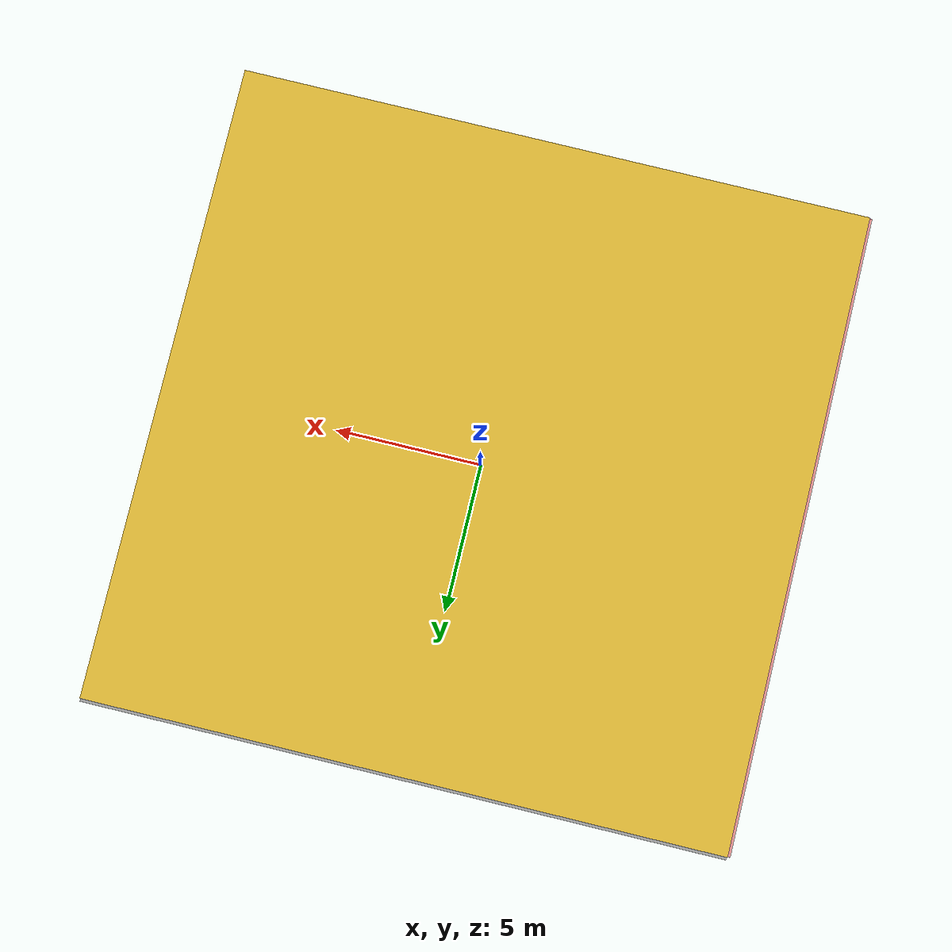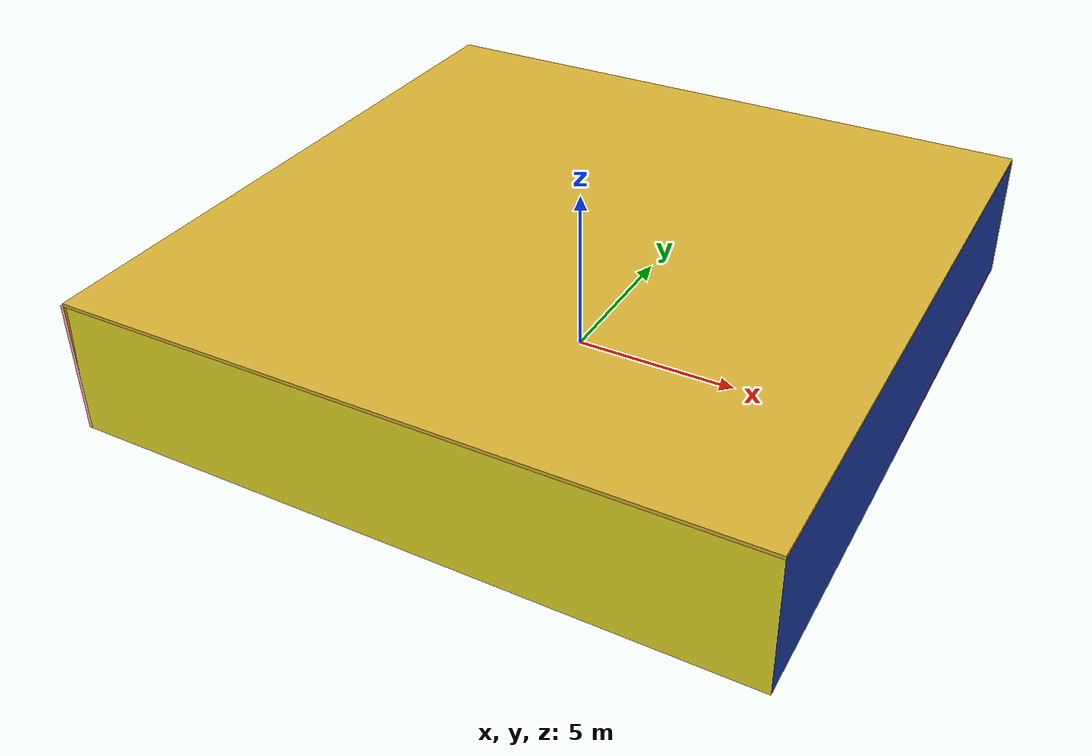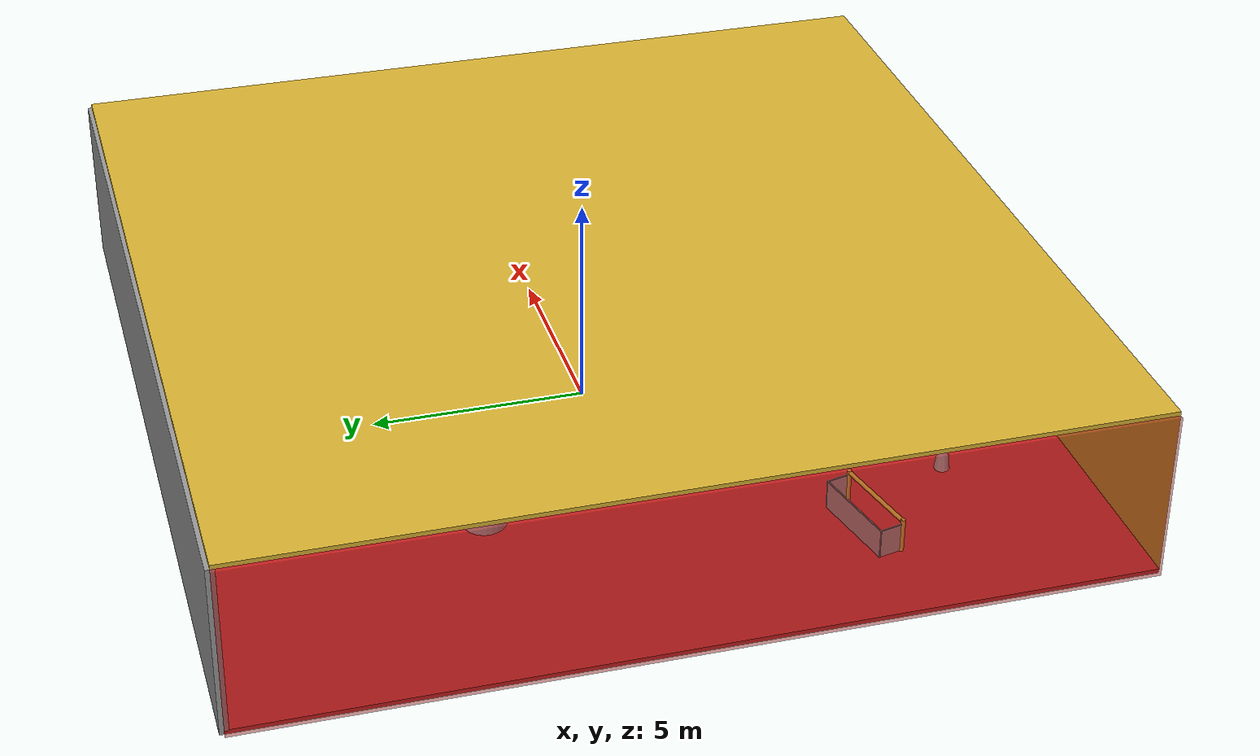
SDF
<sdf version="1.4">
 <world name="default">
  <physics type="ode">
   <max_step_size>0.001</max_step_size>
   <real_time_factor>1</real_time_factor>
   <real_time_update_rate>1000</real_time_update_rate>
   <gravity>0 0 -9.8</gravity>
  </physics>
  <scene><ambient>0.4 0.4 0.4 1</ambient><background>0.7 0.7 0.7 1</background><shadows>1</shadows></scene>
  <model name="Surrounding">
   <static>1</static>
   <link name="Ceiling">
    <collision name="Ceiling_Collision"><geometry><box><size>20 20 0.1</size></box></geometry></collision>
    <visual name="Ceiling_Visual">
     <geometry><box><size>20 20 0.1</size></box></geometry>
     <material>
      <script><uri>file://media/materials/scripts/gazebo.material</uri><name>Gazebo/Gold</name></script>
     </material>
    </visual>
    <pose>0 0 4.05 0 0 0</pose>
   </link>
   <link name="Wall_South">
    <collision name="Wall_South_Collision">
     <geometry><box><size>20 0 4</size></box></geometry>
     <pose>0 0 2 0 -0 0</pose>
    </collision>
    <visual name="Wall_South_Visual">
     <pose>0 0 2 0 -0 0</pose>
     <geometry><box><size>20 0 4</size></box></geometry>
     <material>
      <script><uri>file://media/materials/scripts/gazebo.material</uri><name>Gazebo/Yellow</name></script>
     </material>
    </visual>
    <velocity_decay><linear>0</linear><angular>0</angular></velocity_decay>
    <pose>0 -10 0 0 -0 0</pose>
   </link>
   <link name="Wall_East">
    <collision name="Wall_21_Collision">
     <geometry><box><size>20 0 4</size></box></geometry>
     <pose>0 0 2 0 -0 0</pose>
    </collision>
    <visual name="Wall_21_Visual">
     <pose>0 0 2 0 -0 0</pose>
     <geometry><box><size>20 0 4</size></box></geometry>
     <material>
      <script><uri>file://media/materials/scripts/gazebo.material</uri><name>Gazebo/BlueLaser</name></script>
     </material>
    </visual>
    <velocity_decay><linear>0</linear><angular>0</angular></velocity_decay>
    <pose>10 0 0 0 -0 1.5708</pose>
   </link>
   <link name="Wall_North">
    <collision name="Wall_22_Collision">
     <geometry><box><size>20 0.2 4</size></box></geometry>
     <pose>0 0 2 0 -0 0</pose>
    </collision>
    <visual name="Wall_22_Visual">
     <pose>0 0 2 0 -0 0</pose>
     <geometry><box><size>20 0.2 4</size></box></geometry>
     <material>
      <script><uri>file://media/materials/scripts/gazebo.material</uri><name>Gazebo/Grey</name></script>
     </material>
    </visual>
    <velocity_decay><linear>0</linear><angular>0</angular></velocity_decay>
    <pose>0 10 0 0 -0 0</pose>
   </link>
   <link name="Wall_West">
    <collision name="Wall_23_Collision">
     <geometry><box><size>20 0.2 4</size></box></geometry>
     <pose>0 0 2 0 -0 0</pose>
    </collision>
    <visual name="Wall_23_Visual">
     <pose>0 0 2 0 -0 0</pose>
     <geometry><box><size>20 0.2 4</size></box></geometry>
     <material>
      <script><uri>file://media/materials/scripts/gazebo.material</uri><name>Gazebo/RedTransparent</name></script>
     </material>
    </visual>
    <velocity_decay><linear>0</linear><angular>0</angular></velocity_decay>
    <pose>-10 0 0 0 0 -1.5708</pose>
   </link>
   <link name="Ground_link">
    <collision name="collision">
     <pose>0 0 .05 0 -0 0</pose>
     <geometry><box><size>20 20 0.1</size></box></geometry>
    </collision>
    <visual name="visual">
     <pose>0 0 .05 0 -0 0</pose>
     <geometry><box><size>20 20 0.1</size></box></geometry>
     <material>
      <script><uri>file://media/materials/scripts/gazebo.material</uri><name>Gazebo/Red</name></script>
     </material>
    </visual>
   </link>
   <static>1</static>
  </model>
  <spherical_coordinates>
   <surface_model>EARTH_WGS84</surface_model>
   <latitude_deg>0</latitude_deg>
   <longitude_deg>0</longitude_deg>
   <elevation>0</elevation>
   <heading_deg>0</heading_deg>
  </spherical_coordinates>
  <light name="lightball_0" type="diffuse">
   <diffuse>0.8 0.8 0.8 1</diffuse>
   <specular>0.2 0.2 0.2 1</specular>
   <attenuation>
    <range>100</range>
    <constant>0.7</constant>
    <linear>0.01</linear>
    <quadratic>0.001</quadratic>
   </attenuation>
   <direction>-0.5 0.1 -0.9</direction>
   <pose>-9.15110725157 6.67393640987 1.48496317314 0 0 0</pose>
  </light>
  <light name="lightball_1" type="diffuse">
   <diffuse>0.8 0.8 0.8 1</diffuse>
   <specular>0.2 0.2 0.2 1</specular>
   <attenuation>
    <range>100</range>
    <constant>0.7</constant>
    <linear>0.01</linear>
    <quadratic>0.001</quadratic>
   </attenuation>
   <direction>-0.5 0.1 -0.9</direction>
   <pose>6.37148078164 9.5931631091 1.13823464602 0 0 0</pose>
  </light>
  <light name="lightball_2" type="diffuse">
   <diffuse>0.8 0.8 0.8 1</diffuse>
   <specular>0.2 0.2 0.2 1</specular>
   <attenuation>
    <range>100</range>
    <constant>0.7</constant>
    <linear>0.01</linear>
    <quadratic>0.001</quadratic>
   </attenuation>
   <direction>-0.5 0.1 -0.9</direction>
   <pose>-6.13885971719 -3.198289432 1.40866828291 0 0 0</pose>
  </light>
  <light name="lightball_3" type="diffuse">
   <diffuse>0.8 0.8 0.8 1</diffuse>
   <specular>0.2 0.2 0.2 1</specular>
   <attenuation>
    <range>100</range>
    <constant>0.7</constant>
    <linear>0.01</linear>
    <quadratic>0.001</quadratic>
   </attenuation>
   <direction>-0.5 0.1 -0.9</direction>
   <pose>7.28660477195 -7.27604240945 2.31820310773 0 0 0</pose>
  </light>
  <light name="lightball_4" type="diffuse">
   <diffuse>0.8 0.8 0.8 1</diffuse>
   <specular>0.2 0.2 0.2 1</specular>
   <attenuation>
    <range>100</range>
    <constant>0.7</constant>
    <linear>0.01</linear>
    <quadratic>0.001</quadratic>
   </attenuation>
   <direction>-0.5 0.1 -0.9</direction>
   <pose>-5.08046774364 -9.95412145425 2.22835724945 0 0 0</pose>
  </light>
  <light name="lightball_5" type="diffuse">
   <diffuse>0.8 0.8 0.8 1</diffuse>
   <specular>0.2 0.2 0.2 1</specular>
   <attenuation>
    <range>100</range>
    <constant>0.7</constant>
    <linear>0.01</linear>
    <quadratic>0.001</quadratic>
   </attenuation>
   <direction>-0.5 0.1 -0.9</direction>
   <pose>-0.928242125789 -5.45931482894 3.15085584883 0 0 0</pose>
  </light>
  <light name="lightball_6" type="diffuse">
   <diffuse>0.8 0.8 0.8 1</diffuse>
   <specular>0.2 0.2 0.2 1</specular>
   <attenuation>
    <range>100</range>
    <constant>0.7</constant>
    <linear>0.01</linear>
    <quadratic>0.001</quadratic>
   </attenuation>
   <direction>-0.5 0.1 -0.9</direction>
   <pose>-6.97870709769 5.89531275228 3.73049298029 0 0 0</pose>
  </light>
  <light name="lightball_7" type="diffuse">
   <diffuse>0.8 0.8 0.8 1</diffuse>
   <specular>0.2 0.2 0.2 1</specular>
   <attenuation>
    <range>100</range>
    <constant>0.7</constant>
    <linear>0.01</linear>
    <quadratic>0.001</quadratic>
   </attenuation>
   <direction>-0.5 0.1 -0.9</direction>
   <pose>-0.826403297101 1.51701121071 1.37493325904 0 0 0</pose>
  </light>
  <light name="lightball_8" type="diffuse">
   <diffuse>0.8 0.8 0.8 1</diffuse>
   <specular>0.2 0.2 0.2 1</specular>
   <attenuation>
    <range>100</range>
    <constant>0.7</constant>
    <linear>0.01</linear>
    <quadratic>0.001</quadratic>
   </attenuation>
   <direction>-0.5 0.1 -0.9</direction>
   <pose>-7.49176938522 -1.53232627921 0.90325797962 0 0 0</pose>
  </light>
  <light name="lightball_9" type="diffuse">
   <diffuse>0.8 0.8 0.8 1</diffuse>
   <specular>0.2 0.2 0.2 1</specular>
   <attenuation>
    <range>100</range>
    <constant>0.7</constant>
    <linear>0.01</linear>
    <quadratic>0.001</quadratic>
   </attenuation>
   <direction>-0.5 0.1 -0.9</direction>
   <pose>-0.375835313103 -6.96233206466 3.38621251127 0 0 0</pose>
  </light>
  <light name="lightball_10" type="diffuse">
   <diffuse>0.8 0.8 0.8 1</diffuse>
   <specular>0.2 0.2 0.2 1</specular>
   <attenuation>
    <range>100</range>
    <constant>0.7</constant>
    <linear>0.01</linear>
    <quadratic>0.001</quadratic>
   </attenuation>
   <direction>-0.5 0.1 -0.9</direction>
   <pose>4.26393492403 -1.9258114974 3.13349327646 0 0 0</pose>
  </light>
  <light name="lightball_11" type="diffuse">
   <diffuse>0.8 0.8 0.8 1</diffuse>
   <specular>0.2 0.2 0.2 1</specular>
   <attenuation>
    <range>100</range>
    <constant>0.7</constant>
    <linear>0.01</linear>
    <quadratic>0.001</quadratic>
   </attenuation>
   <direction>-0.5 0.1 -0.9</direction>
   <pose>-8.26455771279 -3.37927901488 3.00683635152 0 0 0</pose>
  </light>
  <include>
   <uri>model://robocup_3Dsim_goal</uri>
   <pose>-6.89136068888 -4.71590651938 0 0 0 1.79510239115</pose>
  </include>
  <include>
   <uri>model://construction_cone</uri>
   <pose>-5.22994345237 -6.96007650579 0 0 0 3.12066127699</pose>
  </include>
  <include>
   <uri>model://textured_shapes</uri>
   <pose>-3.99624738983 2.05964136718 0 0 0 0.381690407075</pose>
  </include>
  <include><uri>model://cabinet</uri><pose>-2.0898340676 4.15983739025 0 0 0 1.86448709871</pose></include>
  <include><uri>model://cabinet</uri><pose>1.192293436 1.04244103725 0 0 0 1.86205537767</pose></include>
  <include>
   <uri>model://construction_cone</uri>
   <pose>0.790007454884 4.0696051208 0 0 0 1.15584652043</pose>
  </include>
  <include>
   <uri>model://construction_cone</uri>
   <pose>5.10895348626 4.58527603645 0 0 0 2.42677705239</pose>
  </include>
 </world>
</sdf>

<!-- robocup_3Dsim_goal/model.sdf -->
<sdf version="1.5">
  <model name="robocup_3d_goal">
    <static>true</static>
    <link name="left_post">
      <pose>0 1.05 0.45 0 0 0</pose>
      <collision name="collision">
        <geometry>
          <cylinder>
            <radius>0.05</radius>
            <length>0.9</length>
          </cylinder>
        </geometry>
      </collision>
      <visual name="visual">
        <geometry>
          <cylinder>
            <radius>0.05</radius>
            <length>0.9</length>
          </cylinder>
        </geometry>
        <material>
          <script>
            <uri>file://media/materials/scripts/gazebo.material</uri>
            <name>Gazebo/ZincYellow</name>
          </script>
        </material>
      </visual>
    </link>
    <link name="left_support_horiz_lower">
      <pose>0.30 1.05 0.01 0 0 0</pose>
      <collision name="collision">
        <geometry>
          <box>
            <size>0.50 0.02 0.02</size>
          </box>
        </geometry>
      </collision>
      <visual name="visual">
        <geometry>
          <box>
            <size>0.50 0.02 0.02</size>
          </box>
        </geometry>
        <material>
          <script>
            <uri>file://media/materials/scripts/gazebo.material</uri>
            <name>Gazebo/White</name>
          </script>
        </material>
      </visual>
    </link>
    <link name="left_support_horiz_upper">
      <pose>0.30 1.05 0.79 0 0 0</pose>
      <collision name="collision">
        <geometry>
          <box>
            <size>0.50 0.02 0.02</size>
          </box>
        </geometry>
      </collision>
      <visual name="visual">
        <geometry>
          <box>
            <size>0.50 0.02 0.02</size>
          </box>
        </geometry>
        <material>
          <script>
            <uri>file://media/materials/scripts/gazebo.material</uri>
            <name>Gazebo/White</name>
          </script>
        </material>
      </visual>
    </link>
    <link name="left_support_vertical">
      <pose>0.56 1.05 0.4 0 1.5708 0</pose>
      <collision name="collision">
        <geometry>
          <box>
            <size>0.80 0.02 0.02</size>
          </box>
        </geometry>
      </collision>
      <visual name="visual">
        <geometry>
          <box>
            <size>0.80 0.02 0.02</size>
          </box>
        </geometry>
        <material>
          <script>
            <uri>file://media/materials/scripts/gazebo.material</uri>
            <name>Gazebo/White</name>
          </script>
        </material>
      </visual>
    </link>
    <link name="right_support_horiz_lower">
      <pose>0.30 -1.05 0.01 0 0 0</pose>
      <collision name="collision">
        <geometry>
          <box>
            <size>0.50 0.02 0.02</size>
          </box>
        </geometry>
      </collision>
      <visual name="visual">
        <geometry>
          <box>
            <size>0.50 0.02 0.02</size>
          </box>
        </geometry>
        <material>
          <script>
            <uri>file://media/materials/scripts/gazebo.material</uri>
            <name>Gazebo/White</name>
          </script>
        </material>
      </visual>
    </link>
    <link name="right_support_horiz_upper">
      <pose>0.30 -1.05 0.79 0 0 0</pose>
      <collision name="collision">
        <geometry>
          <box>
            <size>0.50 0.02 0.02</size>
          </box>
        </geometry>
      </collision>
      <visual name="visual">
        <geometry>
          <box>
            <size>0.50 0.02 0.02</size>
          </box>
        </geometry>
        <material>
          <script>
            <uri>file://media/materials/scripts/gazebo.material</uri>
            <name>Gazebo/White</name>
          </script>
        </material>
      </visual>
    </link>
    <link name="right_support_vertical">
      <pose>0.56 -1.05 0.4 0 1.5708 0</pose>
      <collision name="collision">
        <geometry>
          <box>
            <size>0.80 0.02 0.02</size>
          </box>
        </geometry>
      </collision>
      <visual name="visual">
        <geometry>
          <box>
            <size>0.80 0.02 0.02</size>
          </box>
        </geometry>
        <material>
          <script>
            <uri>file://media/materials/scripts/gazebo.material</uri>
            <name>Gazebo/White</name>
          </script>
        </material>
      </visual>
    </link>
    <link name="center_support_horiz_lower">
      <pose>0.56 0 0.01 0 1.5708 0</pose>
      <collision name="collision">
        <geometry>
          <box>
            <size>0.02 2.08 0.02</size>
          </box>
        </geometry>
      </collision>
      <visual name="visual">
        <geometry>
          <box>
            <size>0.02 2.08 0.02</size>
          </box>
        </geometry>
        <material>
          <script>
            <uri>file://media/materials/scripts/gazebo.material</uri>
            <name>Gazebo/White</name>
          </script>
        </material>
      </visual>
    </link>
    <link name="center_support_horiz_upper">
      <pose>0.56 0 0.79 0 1.5708 0</pose>
      <collision name="collision">
        <geometry>
          <box>
            <size>0.02 2.08 0.02</size>
          </box>
        </geometry>
      </collision>
      <visual name="visual">
        <geometry>
          <box>
            <size>0.02 2.08 0.02</size>
          </box>
        </geometry>
        <material>
          <script>
            <uri>file://media/materials/scripts/gazebo.material</uri>
            <name>Gazebo/White</name>
          </script>
        </material>
      </visual>
    </link>
    <link name="right_post">
      <pose>0 -1.05 0.45 0 0 0</pose>
      <collision name="collision">
        <geometry>
          <cylinder>
            <radius>0.05</radius>
            <length>0.9</length>
          </cylinder>
        </geometry>
      </collision>
      <visual name="visual">
        <geometry>
          <cylinder>
            <radius>0.05</radius>
            <length>0.9</length>
          </cylinder>
        </geometry>
        <material>
          <script>
            <uri>file://media/materials/scripts/gazebo.material</uri>
            <name>Gazebo/ZincYellow</name>
          </script>
        </material>
      </visual>
    </link>
    <link name="crossbar">
      <pose>0 0 0.85 1.57 1.57 0</pose>
      <collision name="collision">
        <geometry>
          <cylinder>
            <radius>0.05</radius>
            <length>2.0</length>
          </cylinder>
        </geometry>
      </collision>
      <visual name="visual">
        <geometry>
          <cylinder>
            <radius>0.05</radius>
            <length>2.0</length>
          </cylinder>
        </geometry>
        <material>
          <script>
            <uri>file://media/materials/scripts/gazebo.material</uri>
            <name>Gazebo/ZincYellow</name>
          </script>
        </material>
      </visual>
    </link>
    <link name="center_net">
      <pose>0.56 0 0.40 0 0 0</pose>
      <collision name="collision">
        <geometry>
          <box>
            <size>0.01 2.1 0.80</size>
          </box>
        </geometry>
      </collision>
      <visual name="visual">
        <geometry>
          <box>
            <size>0.01 2.1 0.80</size>
          </box>
        </geometry>
        <material>
          <script>
            <uri>model://../model_source/models/robocup09_spl_field/materials/scripts/</uri>
            <uri>model://../model_source/models/robocup09_spl_field/materials/textures/</uri>
            <name>RoboCup/Net</name>
          </script>
        </material>
      </visual>
    </link>
    <link name="left_net">
      <pose>0.30 1.05 0.40 0 0 0</pose>
      <collision name="collision">
        <geometry>
          <box>
            <size>0.50 0.01 0.76</size>
          </box>
        </geometry>
      </collision>
      <visual name="visual">
        <geometry>
          <box>
            <size>0.50 0.01 0.76</size>
          </box>
        </geometry>
        <material>
          <script>
            <uri>model://../model_source/models/robocup09_spl_field/materials/scripts/</uri>
            <uri>model://../model_source/models/robocup09_spl_field/materials/textures/</uri>
            <name>RoboCup/Net</name>
          </script>
        </material>
      </visual>
    </link>
    <link name="right_net">
      <pose>0.30 -1.05 0.40 0 0 0</pose>
      <collision name="collision">
        <geometry>
          <box>
            <size>0.50 0.01 0.76</size>
          </box>
        </geometry>
      </collision>
      <visual name="visual">
        <geometry>
          <box>
            <size>0.50 0.01 0.76</size>
          </box>
        </geometry>
        <material>
          <script>
            <uri>model://../model_source/models/robocup09_spl_field/materials/scripts/</uri>
            <uri>model://../model_source/models/robocup09_spl_field/materials/textures/</uri>
            <name>RoboCup/Net</name>
          </script>
        </material>
      </visual>
    </link>
  </model>
</sdf>

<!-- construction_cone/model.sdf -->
<sdf version="1.5">
  <model name="Construction Cone">
    <link name="link">
      <collision name="collision">
        <geometry>
          <mesh>
            <scale>10 10 10</scale>
            <uri>file://isr-testbed/construction_cone/meshes/construction_cone.dae</uri>
          </mesh>
        </geometry>
      </collision>
      <visual name="visual">
        <geometry>
          <mesh>
            <scale>10 10 10</scale>
            <uri>file://isr-testbed/construction_cone/meshes/construction_cone.dae</uri>
          </mesh>
        </geometry>
      </visual>
    </link>
  </model>
</sdf>

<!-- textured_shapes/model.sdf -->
<sdf version="1.6">
  <model name="textured_shapes">
    <pose>0 0 0.5 0 0 0</pose>
    <link name="box">
      <pose>0 -1.5 0 0 0 0</pose>
      <collision name="collision">
        <geometry>
          <box>
            <size>1 1 1</size>
          </box>
        </geometry>
      </collision>
      <visual name="visual">
        <geometry>
          <box>
            <size>1 1 1</size>
          </box>
        </geometry>
        <material>
          <script>
            <uri>model://../model_source/models/textured_shapes/materials/scripts</uri>
            <uri>model://../model_source/models/textured_shapes/materials/textures</uri>
            <name>TexturedShape/Squares</name>
          </script>
        </material>
      </visual>
    </link>
    <link name="sphere">
      <collision name="collision">
        <geometry>
          <sphere>
            <radius>0.5</radius>
          </sphere>
        </geometry>
      </collision>
      <visual name="visual">
        <geometry>
          <sphere>
            <radius>0.5</radius>
          </sphere>
        </geometry>
        <material>
          <script>
            <uri>model://../model_source/models/textured_shapes/materials/scripts</uri>
            <uri>model://../model_source/models/textured_shapes/materials/textures</uri>
            <name>TexturedShape/Squares</name>
          </script>
        </material>
      </visual>
    </link>
    <link name="cylinder">
      <pose>0 1.5 0 0 0 0</pose>
      <collision name="collision">
        <geometry>
          <cylinder>
            <radius>0.5</radius>
            <length>1</length>
          </cylinder>
        </geometry>
      </collision>
      <visual name="visual">
        <geometry>
          <cylinder>
            <radius>0.5</radius>
            <length>1</length>
          </cylinder>
        </geometry>
        <material>
          <script>
            <uri>model://../model_source/models/textured_shapes/materials/scripts</uri>
            <uri>model://../model_source/models/textured_shapes/materials/textures</uri>
            <name>TexturedShape/Squares</name>
          </script>
        </material>
      </visual>
    </link>
  </model>
</sdf>

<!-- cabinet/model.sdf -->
<sdf version="1.5">
  <model name="cabinet">
    <static>true</static>
    <link name="cabinet_bottom_plate">
      <inertial>
        <pose>0 0 -1 0 0 0</pose>
        <inertia>
          <ixx>2.050000</ixx>
          <ixy>0</ixy>
          <ixz>0</ixz>
          <iyy>2.050000</iyy>
          <iyz>0</iyz>
          <izz>2.050000</izz>
        </inertia>
        <mass>25.000000</mass>
      </inertial>
      <collision name="cabinet_bottom_plate_geom">
        <pose>0 0 0.010000 0 0 0</pose>
        <geometry>
          <box>
            <size>0.450000 0.450000 0.020000</size>
          </box>
        </geometry>
      </collision>
      <visual name="cabinet_bottom_plate_geom_visual">
        <pose>0 0 0.010000 0 0 0</pose>
        <geometry>
          <box>
            <size>0.450000 0.450000 0.020000</size>
          </box>
        </geometry>
        <material>
          <script>
            <uri>model://media/materials/scripts/gazebo.material</uri>
            <name>Gazebo/Wood</name>
          </script>
        </material>
      </visual>
      <collision name="cabinet_bottom_plate_geom_cabinet_back_plate">
        <pose>0.235000 0 0.510000 0 0 0</pose>
        <geometry>
          <box>
            <size>0.020000 0.450000 1.020000</size>
          </box>
        </geometry>
      </collision>
      <visual name="cabinet_bottom_plate_geom_cabinet_back_plate_visual">
        <pose>0.235000 0 0.510000 0 0 0</pose>
        <geometry>
          <box>
            <size>0.020000 0.450000 1.020000</size>
          </box>
        </geometry>
        <material>
          <script>
            <uri>model://media/materials/scripts/gazebo.material</uri>
            <name>Gazebo/Wood</name>
          </script>
        </material>
      </visual>
      <collision name="cabinet_bottom_plate_geom_cabinet_left_plate">
        <pose>0 0.235000 0.510000 0 0 0</pose>
        <geometry>
          <box>
            <size>0.450000 0.020000 1.020000</size>
          </box>
        </geometry>
      </collision>
      <visual name="cabinet_bottom_plate_geom_cabinet_left_plate_visual">
        <pose>0 0.235000 0.510000 0 0 0</pose>
        <geometry>
          <box>
            <size>0.450000 0.020000 1.020000</size>
          </box>
        </geometry>
        <material>
          <script>
            <uri>model://media/materials/scripts/gazebo.material</uri>
            <name>Gazebo/Wood</name>
          </script>
        </material>
      </visual>
      <collision name="cabinet_bottom_plate_geom_cabinet_middle_plate">
        <pose>0 0 0.510000 0 0 0</pose>
        <geometry>
          <box>
            <size>0.450000 0.450000 0.020000</size>
          </box>
        </geometry>
      </collision>
      <visual name="cabinet_bottom_plate_geom_cabinet_middle_plate_visual">
        <pose>0 0 0.510000 0 0 0</pose>
        <geometry>
          <box>
            <size>0.450000 0.450000 0.020000</size>
          </box>
        </geometry>
        <material>
          <script>
            <uri>model://media/materials/scripts/gazebo.material</uri>
            <name>Gazebo/Wood</name>
          </script>
        </material>
      </visual>
      <collision name="cabinet_bottom_plate_geom_cabinet_right_plate">
        <pose>0 -0.235000 0.510000 0 0 0</pose>
        <geometry>
          <box>
            <size>0.450000 0.020000 1.020000</size>
          </box>
        </geometry>
      </collision>
      <visual name="cabinet_bottom_plate_geom_cabinet_right_plate_visual">
        <pose>0 -0.235000 0.510000 0 0 0</pose>
        <geometry>
          <box>
            <size>0.450000 0.020000 1.020000</size>
          </box>
        </geometry>
        <material>
          <script>
            <uri>model://media/materials/scripts/gazebo.material</uri>
            <name>Gazebo/Wood</name>
          </script>
        </material>
      </visual>
      <collision name="cabinet_bottom_plate_geom_cabinet_top_plate">
        <pose>0 0 1.010000 0 0 0</pose>
        <geometry>
          <box>
            <size>0.450000 0.450000 0.020000</size>
          </box>
        </geometry>
      </collision>
      <visual name="cabinet_bottom_plate_geom_cabinet_top_plate_visual">
        <pose>0 0 1.010000 0 0 0</pose>
        <geometry>
          <box>
            <size>0.450000 0.450000 0.020000</size>
          </box>
        </geometry>
        <material>
          <script>
            <uri>model://media/materials/scripts/gazebo.material</uri>
            <name>Gazebo/Wood</name>
          </script>
        </material>
      </visual>
    </link>
  </model>
</sdf>
